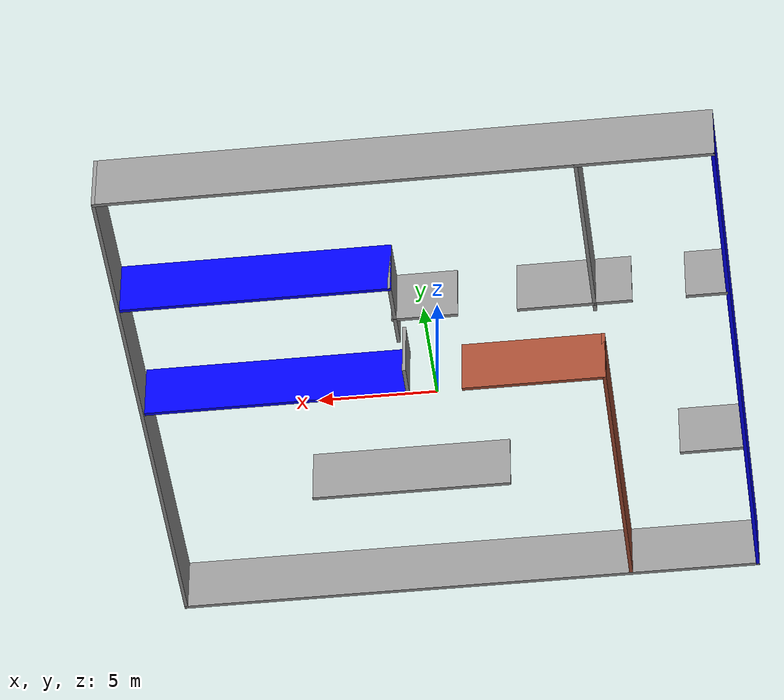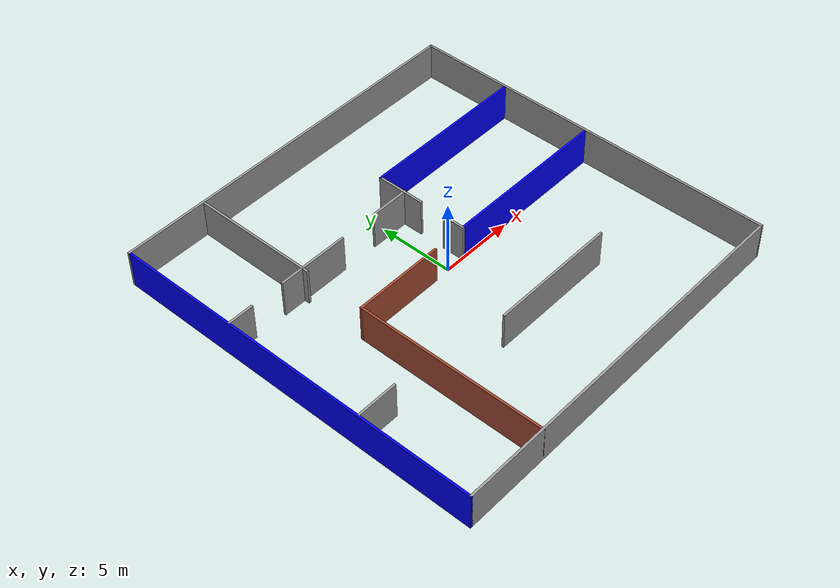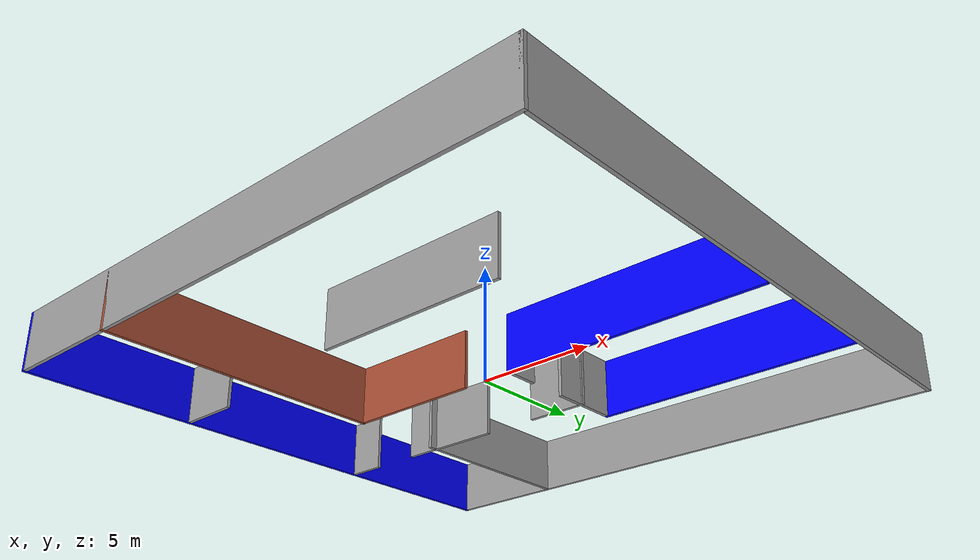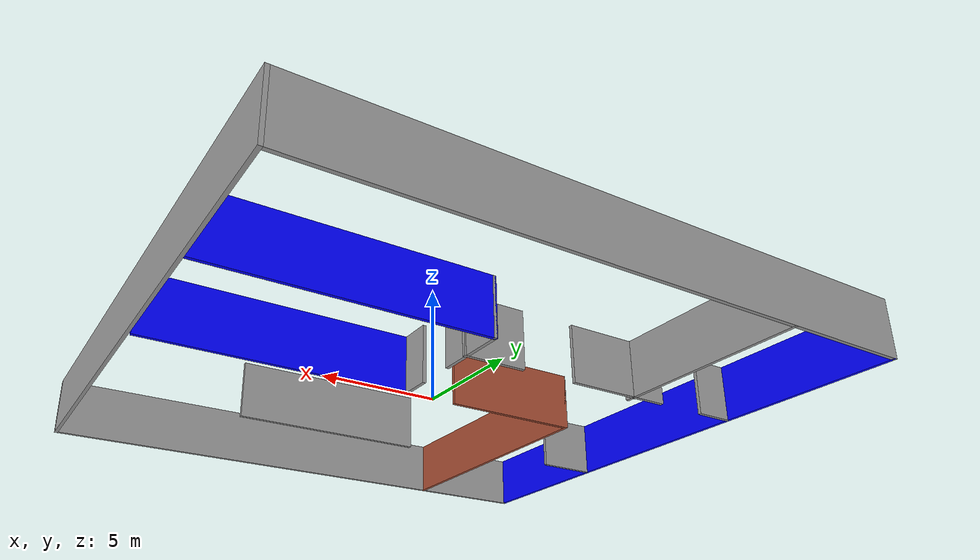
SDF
<?xml version='1.0'?>
<sdf version='1.6'>
  <model name='bigger_building'>
    <pose frame=''>0 0 0 0 -0 0</pose>
    <link name='Wall_27'>
      <collision name='Wall_27_Collision'>
        <geometry>
          <box>
            <size>25.15 0.15 2.5</size>
          </box>
        </geometry>
        <pose frame=''>0 0 1.25 0 -0 0</pose>
      </collision>
      <visual name='Wall_27_Visual'>
        <pose frame=''>0 0 1.25 0 -0 0</pose>
        <geometry>
          <box>
            <size>25.15 0.15 2.5</size>
          </box>
        </geometry>
        <material>
          <script>
            <uri>file://media/materials/scripts/gazebo.material</uri>
            <name>Gazebo/Grey</name>
          </script>
          <ambient>1 1 1 1</ambient>
        </material>
        <meta>
          <layer>0</layer>
        </meta>
      </visual>
      <pose frame=''>0 -12.5 0 0 -0 0</pose>
    </link>
    <link name='Wall_33'>
      <collision name='Wall_33_Collision'>
        <geometry>
          <box>
            <size>25.15 0.15 2.5</size>
          </box>
        </geometry>
        <pose frame=''>0 0 1.25 0 -0 0</pose>
      </collision>
      <visual name='Wall_33_Visual'>
        <pose frame=''>0 0 1.25 0 -0 0</pose>
        <geometry>
          <box>
            <size>25.15 0.15 2.5</size>
          </box>
        </geometry>
        <material>
          <script>
            <uri>file://media/materials/scripts/gazebo.material</uri>
            <name>Gazebo/Grey</name>
          </script>
          <ambient>1 1 1 1</ambient>
        </material>
        <meta>
          <layer>0</layer>
        </meta>
      </visual>
      <pose frame=''>0 12.5 0 0 -0 3.14159</pose>
    </link>
    <link name='Wall_34'>
      <collision name='Wall_34_Collision'>
        <geometry>
          <box>
            <size>25.15 0.15 2.5</size>
          </box>
        </geometry>
        <pose frame=''>0 0 1.25 0 -0 0</pose>
      </collision>
      <visual name='Wall_34_Visual'>
        <pose frame=''>0 0 1.25 0 -0 0</pose>
        <geometry>
          <box>
            <size>25.15 0.15 2.5</size>
          </box>
        </geometry>
        <material>
          <script>
            <uri>file://media/materials/scripts/gazebo.material</uri>
            <name>Gazebo/Grey</name>
          </script>
          <ambient>0 0 1 1</ambient>
        </material>
        <meta>
          <layer>0</layer>
        </meta>
      </visual>
      <pose frame=''>-12.5 0 0 0 0 -1.5708</pose>
    </link>
    <link name='Wall_36'>
      <collision name='Wall_36_Collision'>
        <geometry>
          <box>
            <size>25.15 0.15 2.5</size>
          </box>
        </geometry>
        <pose frame=''>0 0 1.25 0 -0 0</pose>
      </collision>
      <visual name='Wall_36_Visual'>
        <pose frame=''>0 0 1.25 0 -0 0</pose>
        <geometry>
          <box>
            <size>25.15 0.15 2.5</size>
          </box>
        </geometry>
        <material>
          <script>
            <uri>file://media/materials/scripts/gazebo.material</uri>
            <name>Gazebo/Grey</name>
          </script>
          <ambient>1 1 1 1</ambient>
        </material>
        <meta>
          <layer>0</layer>
        </meta>
      </visual>
      <pose frame=''>12.5 0 0 0 0 -1.5708</pose>
    </link>
    <link name='Wall_40'>
      <collision name='Wall_40_Collision'>
        <geometry>
          <box>
            <size>8.5 0.15 2.5</size>
          </box>
        </geometry>
        <pose frame=''>0 0 1.25 0 -0 0</pose>
      </collision>
      <visual name='Wall_40_Visual'>
        <pose frame=''>0 0 1.25 0 -0 0</pose>
        <geometry>
          <box>
            <size>8.5 0.15 2.5</size>
          </box>
        </geometry>
        <material>
          <script>
            <uri>file://media/materials/scripts/gazebo.material</uri>
            <name>Gazebo/Grey</name>
          </script>
          <ambient>1 1 1 1</ambient>
        </material>
        <meta>
          <layer>0</layer>
        </meta>
      </visual>
      <pose frame=''>-7 8.325 0 0 0 -1.5708</pose>
    </link>
    <link name='Wall_42'>
      <collision name='Wall_42_Collision'>
        <geometry>
          <box>
            <size>12.65 0.15 2.5</size>
          </box>
        </geometry>
        <pose frame=''>0 0 1.25 0 -0 0</pose>
      </collision>
      <visual name='Wall_42_Visual'>
        <pose frame=''>0 0 1.25 0 -0 0</pose>
        <geometry>
          <box>
            <size>12.65 0.15 2.5</size>
          </box>
        </geometry>
        <material>
          <script>
            <uri>file://media/materials/scripts/gazebo.material</uri>
            <name>Gazebo/Bricks</name>
          </script>
          <ambient>1 1 1 1</ambient>
        </material>
        <meta>
          <layer>0</layer>
        </meta>
      </visual>
      <pose frame=''>-7 -6.25 0 0 0 -1.5708</pose>
    </link>
    <link name='Wall_44'>
      <collision name='Wall_44_Collision'>
        <geometry>
          <box>
            <size>2.75 0.15 2.5</size>
          </box>
        </geometry>
        <pose frame=''>0 0 1.25 0 -0 0</pose>
      </collision>
      <visual name='Wall_44_Visual'>
        <pose frame=''>0 0 1.25 0 -0 0</pose>
        <geometry>
          <box>
            <size>2.75 0.15 2.5</size>
          </box>
        </geometry>
        <material>
          <script>
            <uri>file://media/materials/scripts/gazebo.material</uri>
            <name>Gazebo/Grey</name>
          </script>
          <ambient>1 1 1 1</ambient>
        </material>
        <meta>
          <layer>0</layer>
        </meta>
      </visual>
      <pose frame=''>-11.119 -5 0 0 -0 0</pose>
    </link>
    <link name='Wall_51'>
      <collision name='Wall_51_Collision'>
        <geometry>
          <box>
            <size>6.04548 0.15 2.5</size>
          </box>
        </geometry>
        <pose frame=''>0 0 1.25 0 -0 0</pose>
      </collision>
      <visual name='Wall_51_Visual'>
        <pose frame=''>0 0 1.25 0 -0 0</pose>
        <geometry>
          <box>
            <size>6.04548 0.15 2.5</size>
          </box>
        </geometry>
        <material>
          <script>
            <uri>file://media/materials/scripts/gazebo.material</uri>
            <name>Gazebo/Bricks</name>
          </script>
          <ambient>1 1 1 1</ambient>
        </material>
        <meta>
          <layer>0</layer>
        </meta>
      </visual>
      <pose frame=''>-4.05226 0 0 0 -0 0</pose>
    </link>
    <link name='Wall_54'>
      <collision name='Wall_54_Collision'>
        <geometry>
          <box>
            <size>11.2045 0.15 2.5</size>
          </box>
        </geometry>
        <pose frame=''>0 0 1.25 0 -0 0</pose>
      </collision>
      <visual name='Wall_54_Visual'>
        <pose frame=''>0 0 1.25 0 -0 0</pose>
        <geometry>
          <box>
            <size>11.2045 0.15 2.5</size>
          </box>
        </geometry>
        <material>
          <script>
            <uri>file://media/materials/scripts/gazebo.material</uri>
            <name>Gazebo/Grey</name>
          </script>
          <ambient>0 0 1 1</ambient>
        </material>
        <meta>
          <layer>0</layer>
        </meta>
      </visual>
      <pose frame=''>6.77274 0 0 0 -0 0</pose>
    </link>
    <link name='Wall_56'>
      <collision name='Wall_56_Collision'>
        <geometry>
          <box>
            <size>1.5 0.15 2.5</size>
          </box>
        </geometry>
        <pose frame=''>0 0 1.25 0 -0 0</pose>
      </collision>
      <visual name='Wall_56_Visual'>
        <pose frame=''>0 0 1.25 0 -0 0</pose>
        <geometry>
          <box>
            <size>1.5 0.15 2.5</size>
          </box>
        </geometry>
        <material>
          <script>
            <uri>file://media/materials/scripts/gazebo.material</uri>
            <name>Gazebo/Grey</name>
          </script>
          <ambient>1 1 1 1</ambient>
        </material>
        <meta>
          <layer>0</layer>
        </meta>
      </visual>
      <pose frame=''>1.24548 0.675 0 0 -0 1.5708</pose>
    </link>
    <link name='Wall_58'>
      <collision name='Wall_58_Collision'>
        <geometry>
          <box>
            <size>3.25 0.15 2.5</size>
          </box>
        </geometry>
        <pose frame=''>0 0 1.25 0 -0 0</pose>
      </collision>
      <visual name='Wall_58_Visual'>
        <pose frame=''>0 0 1.25 0 -0 0</pose>
        <geometry>
          <box>
            <size>3.25 0.15 2.5</size>
          </box>
        </geometry>
        <material>
          <script>
            <uri>file://media/materials/scripts/gazebo.material</uri>
            <name>Gazebo/Grey</name>
          </script>
          <ambient>1 1 1 1</ambient>
        </material>
        <meta>
          <layer>0</layer>
        </meta>
      </visual>
      <pose frame=''>1.24548 4.75 0 0 -0 1.5708</pose>
    </link>
    <link name='Wall_59'>
      <collision name='Wall_59_Collision'>
        <geometry>
          <box>
            <size>11.25 0.15 2.5</size>
          </box>
        </geometry>
        <pose frame=''>0 0 1.25 0 -0 0</pose>
      </collision>
      <visual name='Wall_59_Visual'>
        <pose frame=''>0 0 1.25 0 -0 0</pose>
        <geometry>
          <box>
            <size>11.25 0.15 2.5</size>
          </box>
        </geometry>
        <material>
          <script>
            <uri>file://media/materials/scripts/gazebo.material</uri>
            <name>Gazebo/Grey</name>
          </script>
          <ambient>0 0 1 1</ambient>
        </material>
        <meta>
          <layer>0</layer>
        </meta>
      </visual>
      <pose frame=''>6.79548 6.3 0 0 -0 0</pose>
    </link>
    <link name='Wall_63'>
      <collision name='Wall_63_Collision'>
        <geometry>
          <box>
            <size>1.75 0.15 2.5</size>
          </box>
        </geometry>
        <pose frame=''>0 0 1.25 0 -0 0</pose>
      </collision>
      <visual name='Wall_63_Visual'>
        <pose frame=''>0 0 1.25 0 -0 0</pose>
        <geometry>
          <box>
            <size>1.75 0.15 2.5</size>
          </box>
        </geometry>
        <material>
          <script>
            <uri>file://media/materials/scripts/gazebo.material</uri>
            <name>Gazebo/Grey</name>
          </script>
          <ambient>1 1 1 1</ambient>
        </material>
        <meta>
          <layer>0</layer>
        </meta>
      </visual>
      <pose frame=''>-11.641 4.48174 0 0 -0 0</pose>
    </link>
    <link name='Wall_65'>
      <collision name='Wall_65_Collision'>
        <geometry>
          <box>
            <size>4.75 0.15 2.5</size>
          </box>
        </geometry>
        <pose frame=''>0 0 1.25 0 -0 0</pose>
      </collision>
      <visual name='Wall_65_Visual'>
        <pose frame=''>0 0 1.25 0 -0 0</pose>
        <geometry>
          <box>
            <size>4.75 0.15 2.5</size>
          </box>
        </geometry>
        <material>
          <script>
            <uri>file://media/materials/scripts/gazebo.material</uri>
            <name>Gazebo/Grey</name>
          </script>
          <ambient>1 1 1 1</ambient>
        </material>
        <meta>
          <layer>0</layer>
        </meta>
      </visual>
      <pose frame=''>-6.19097 4.48174 0 0 -0 0</pose>
    </link>
    <link name='Wall_67'>
      <collision name='Wall_67_Collision'>
        <geometry>
          <box>
            <size>2.75 0.15 2.5</size>
          </box>
        </geometry>
        <pose frame=''>0 0 1.25 0 -0 0</pose>
      </collision>
      <visual name='Wall_67_Visual'>
        <pose frame=''>0 0 1.25 0 -0 0</pose>
        <geometry>
          <box>
            <size>2.75 0.15 2.5</size>
          </box>
        </geometry>
        <material>
          <script>
            <uri>file://media/materials/scripts/gazebo.material</uri>
            <name>Gazebo/Grey</name>
          </script>
          <ambient>1 1 1 1</ambient>
        </material>
        <meta>
          <layer>0</layer>
        </meta>
      </visual>
      <pose frame=''>0.009028 4.48174 0 0 -0 0</pose>
    </link>
    <link name='Wall_70'>
      <collision name='Wall_70_Collision'>
        <geometry>
          <box>
            <size>8.5 0.15 2.5</size>
          </box>
        </geometry>
        <pose frame=''>0 0 1.25 0 -0 0</pose>
      </collision>
      <visual name='Wall_70_Visual'>
        <pose frame=''>0 0 1.25 0 -0 0</pose>
        <geometry>
          <box>
            <size>8.5 0.15 2.5</size>
          </box>
        </geometry>
        <material>
          <script>
            <uri>file://media/materials/scripts/gazebo.material</uri>
            <name>Gazebo/Grey</name>
          </script>
          <ambient>1 1 1 1</ambient>
        </material>
        <meta>
          <layer>0</layer>
        </meta>
      </visual>
      <pose frame=''>1.8248 -6.09003 0 0 -0 0</pose>
    </link>
    <static>1</static>
  </model>
</sdf>
